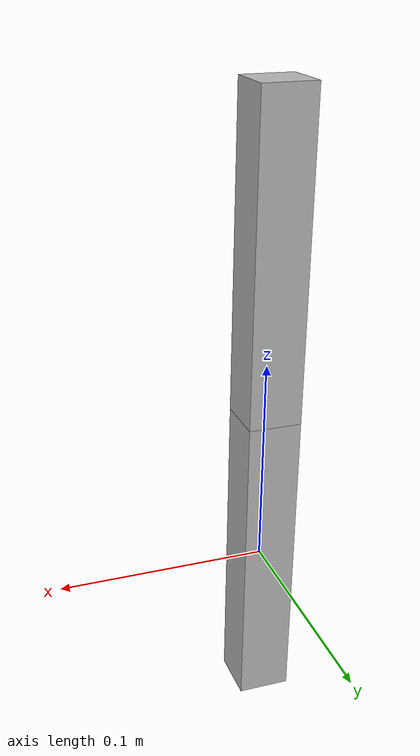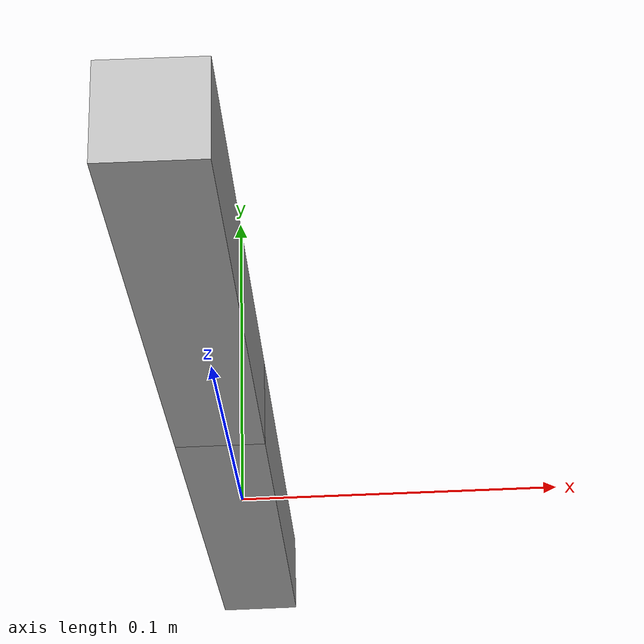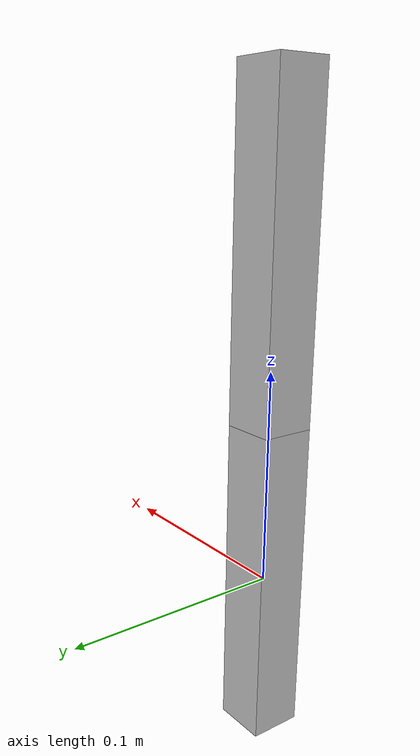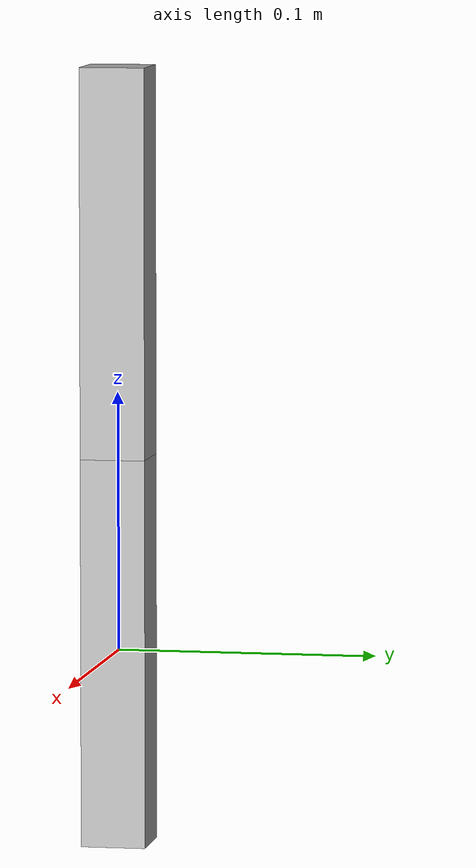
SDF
<?xml version="1.0" ?>
<sdf version="1.4" xmlns:l2="https://github.com/smartin015/l2_makerspace/blob/master/infra/base/README.md#xmlns">
  <model name="Example">
  <static>true</static>
  <link name="testpendant" l2:type="pendant">
    <pose>0 0 0.3 0 0 0</pose>
  </link>
  <link name="TestDepth">
    <pose>0 0 0.3 0 0 0</pose>
    <sensor name="TestSensor" type="gpu_ray" l2:type="depth_render">
      <ray>
        <scan>
          <horizontal>
            <samples>640</samples>
            <min_angle>40</min_angle>
          </horizontal>
          <vertical>
            <samples>640</samples>
            <min_angle>40</min_angle>
          </vertical>
        </scan>
        <range>
          <min>0</min>
          <max>10</max>
        </range>
      </ray>
    </sensor>
  </link>
  <link name="testzone" l2:type="control_zone" l2:control="test_control_preset">
    <pose>0 0.3 0.7 0 0 0</pose>
    <inertial>
      <mass>1.0</mass>
    </inertial>
    <collision name="tz">
      <geometry>
        <box><size>0.05 0.05 0.05</size></box>
      </geometry>
    </collision>
    <visual name="tviz">
      <geometry>
        <box><size>0.05 0.05 0.05</size></box>
      </geometry>
      <material>
        <script>Gazebo/Purple</script>
      </material>
      <transparency>1.0</transparency>
    </visual>
  </link>
  <link name="ArmA">
    <pose>0 0 0 0 0 0</pose>
    <visual name="aviz">
      <geometry>
        <box><size>0.025 0.025 0.15</size></box>
      </geometry>
    </visual>
  </link>
  <link name="ArmB">
    <pose>0 0 0.15 0 0 0</pose>
    <visual name="bviz">
      <geometry>
        <box><size>0.025 0.025 0.15</size></box>
      </geometry>
    </visual>
  </link>
  <joint name="AB" type="revolute">
    <parent>ArmA</parent>
    <child>ArmB</child>
    <pose>0 0 0.15 0 0 0</pose>
    <axis>
      <xyz>0 1 0</xyz>
      <limit>
        <lower>-1.57</lower>
        <upper>1.57</upper>
      </limit>
    </axis>
  </joint>
	<plugin name="joint_states" filename="libgazebo_ros_joint_state_publisher.so">
    <joint_name>AB</joint_name>
    <update_rate>10</update_rate>
  </plugin>
  </model>
</sdf>
